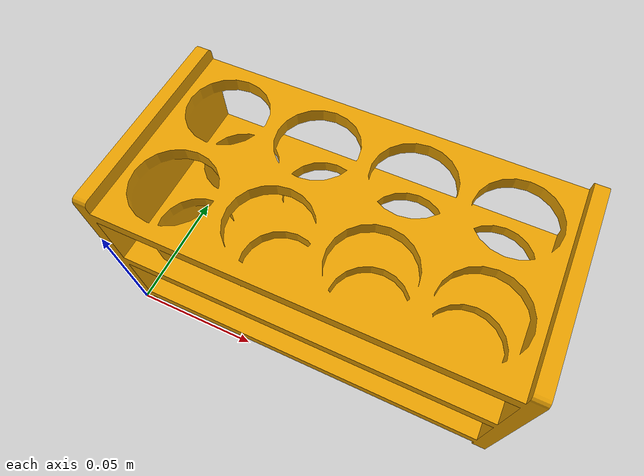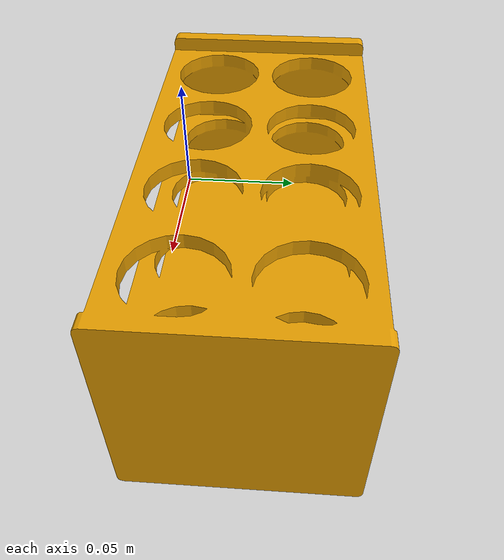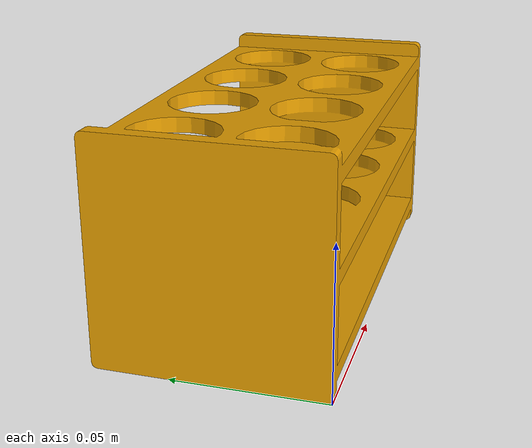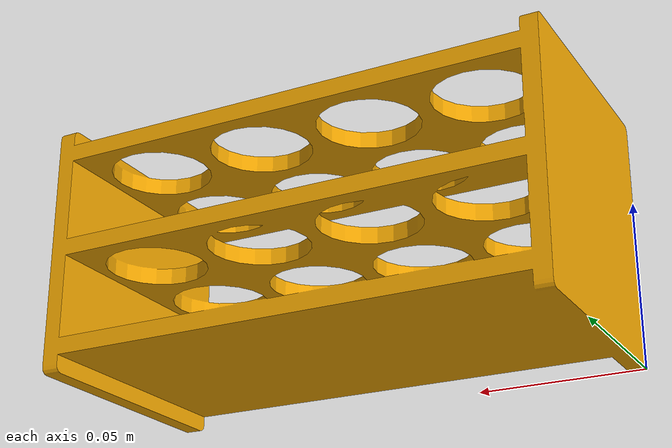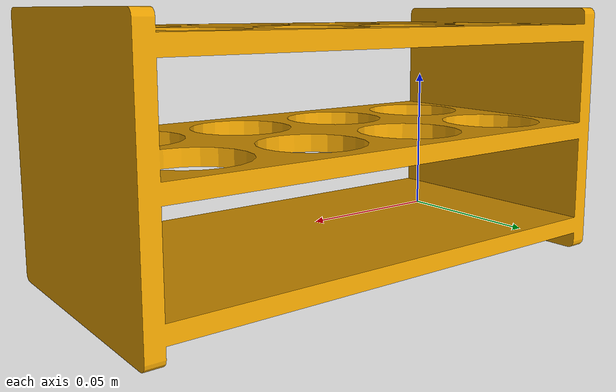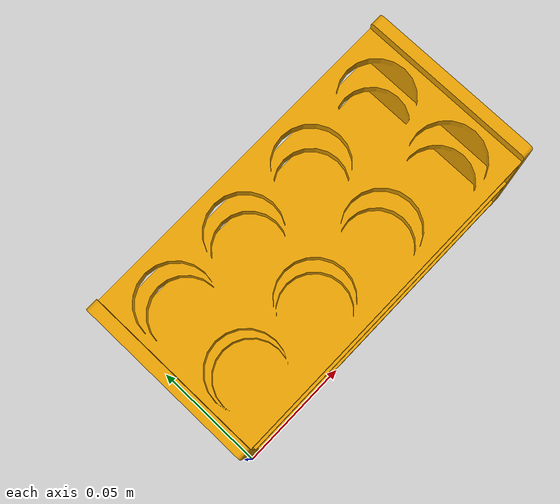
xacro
<?xml version="1.0" ?>
<robot xmlns:xacro="http://www.ros.org/wiki/xacro" name="tube_container">
    <link name='tube_container'>
        <visual name='visual'>
            <geometry>
                <mesh filename="meshes/tube_container.stl"/>
            </geometry>
            <material name="clay" />
        </visual>
    </link>
</robot>
